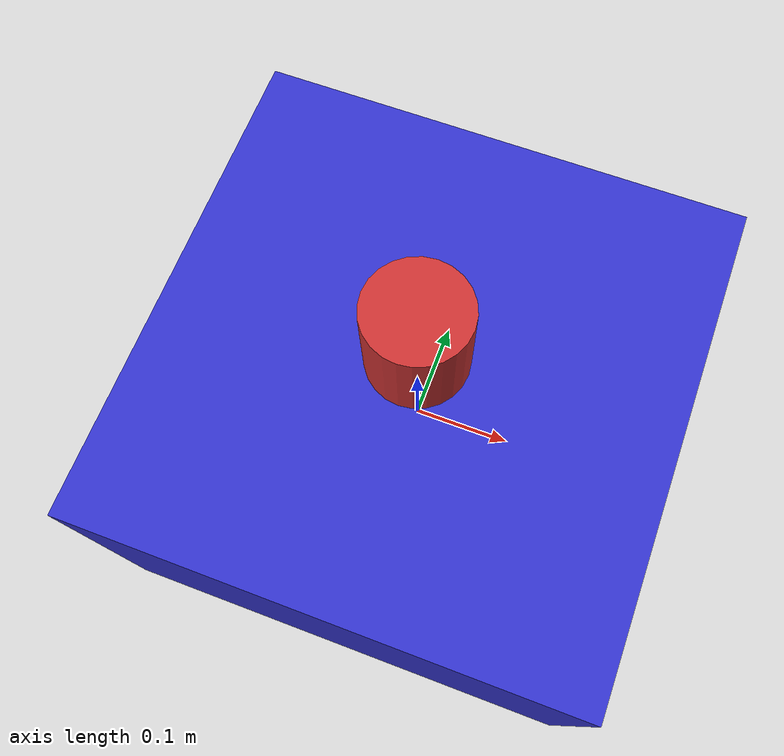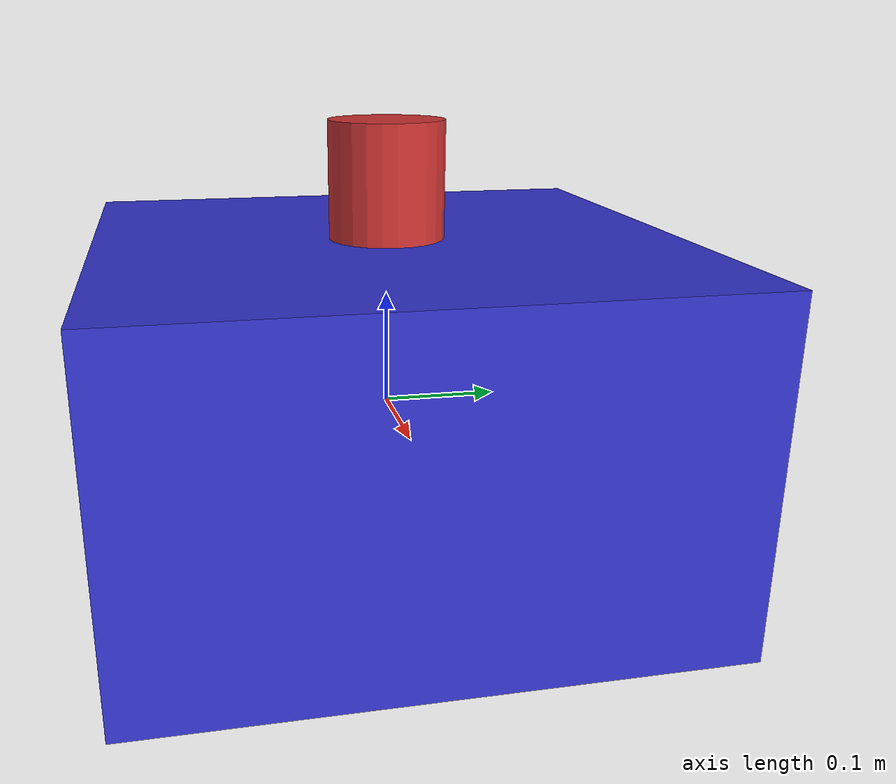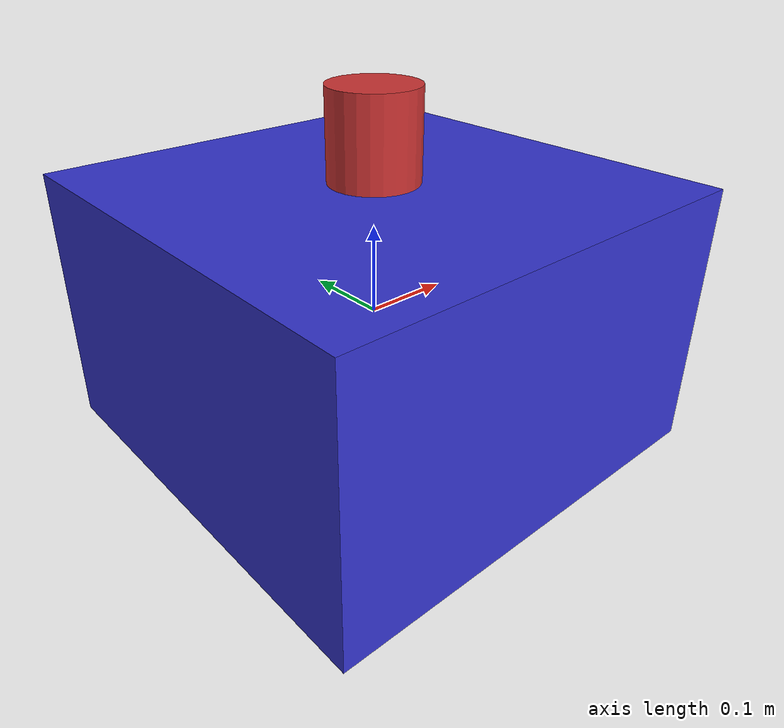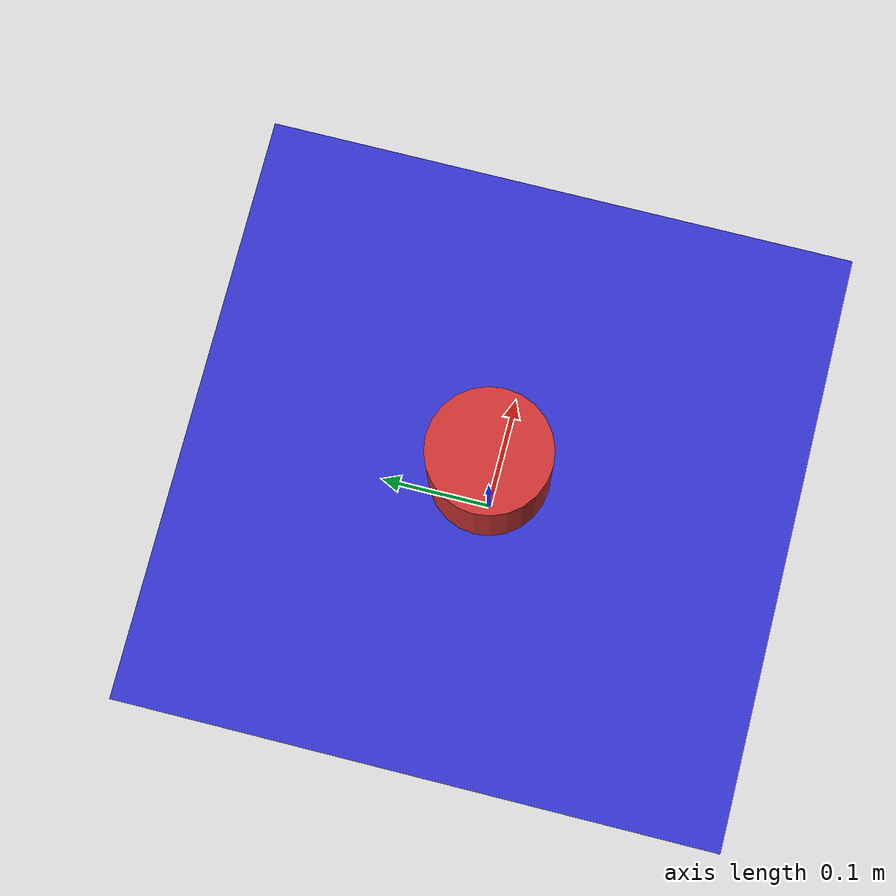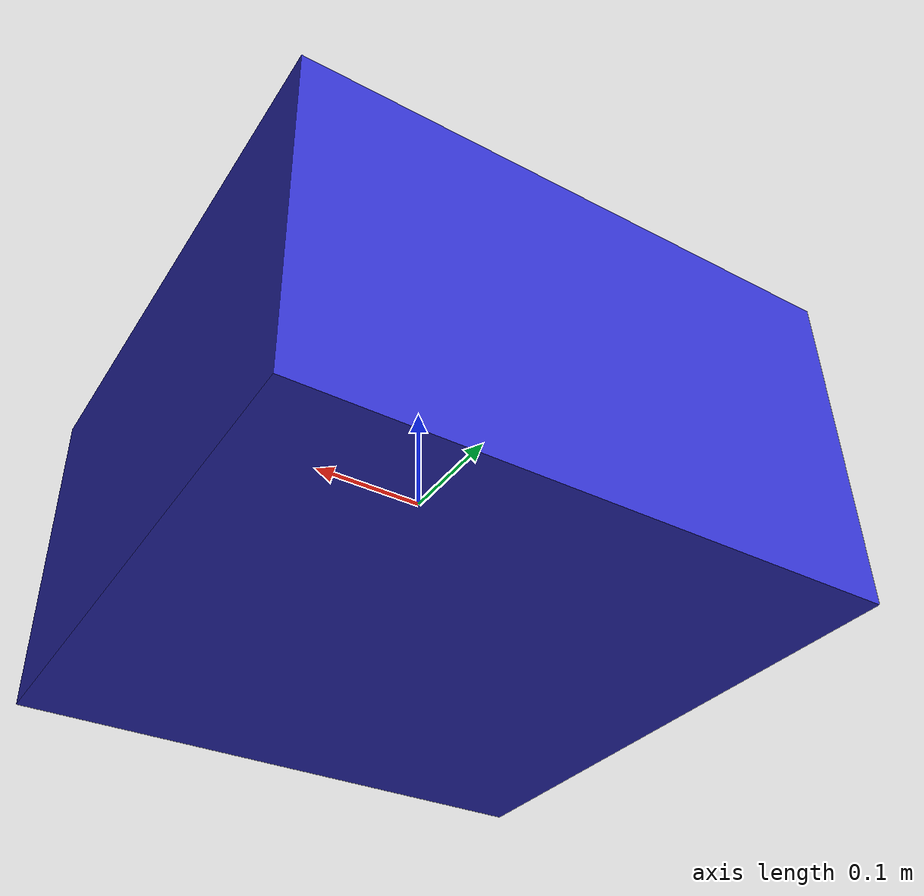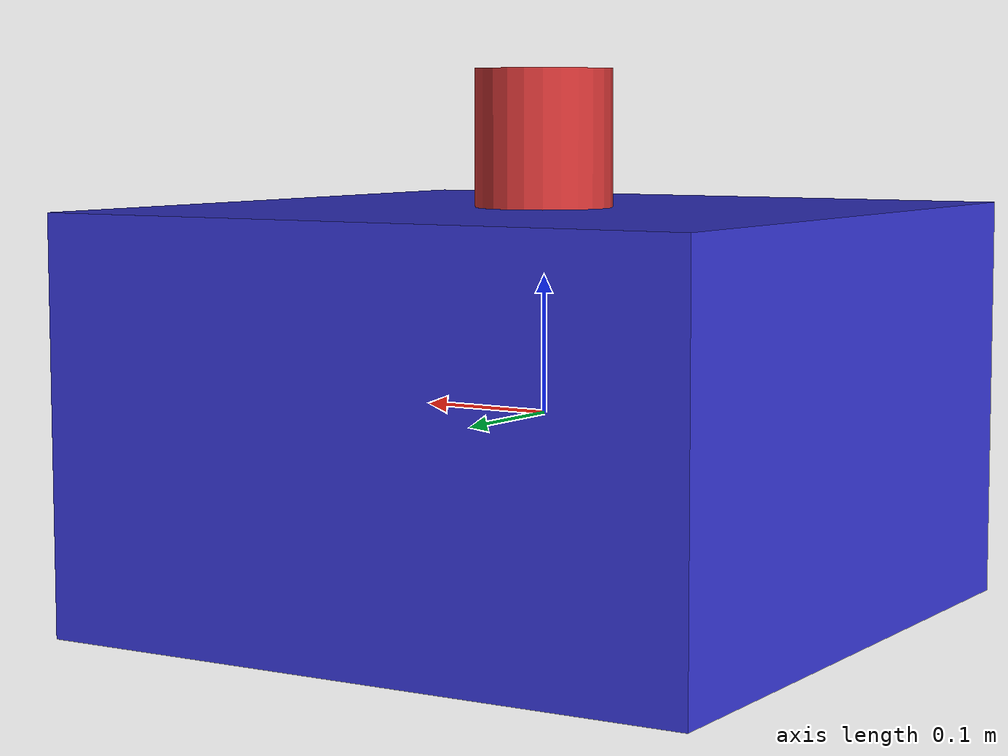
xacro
<?xml version="1.0"?>
<robot xmlns:xacro="http://www.ros.org/wiki/xacro" name="velodyne_robot">

    <!-- Base link -->
    <link name="base_link">
        <visual>
            <geometry>
                <box size="0.5 0.5 0.3"/>
            </geometry>
            <material name="blue">
                <color rgba="0.2 0.2 0.8 1"/>
            </material>
        </visual>
        <collision>
            <geometry>
                <box size="0.5 0.5 0.3"/>
            </geometry>
        </collision>
        <inertial>
            <mass value="10"/>
            <inertia ixx="0.1" ixy="0" ixz="0" iyy="0.1" iyz="0" izz="0.1"/>
        </inertial>
    </link>

    <!-- LiDAR base joint -->
    <joint name="lidar_base_joint" type="fixed">
        <parent link="base_link"/>
        <child link="lidar_base"/>
        <origin xyz="0 0 0.2" rpy="0 0 0"/>
    </joint>

    <!-- LiDAR base link -->
    <link name="lidar_base">
        <visual>
            <geometry>
                <cylinder radius="0.05" length="0.1"/>
            </geometry>
            <material name="red">
                <color rgba="0.8 0.2 0.2 1"/>
            </material>
        </visual>
        <collision>
            <geometry>
                <cylinder radius="0.05" length="0.1"/>
            </geometry>
        </collision>
        <inertial>
            <mass value="0.1"/>
            <inertia ixx="0.001" ixy="0" ixz="0" iyy="0.001" iyz="0" izz="0.001"/>
        </inertial>
    </link>

    <!-- LiDAR joint -->
    <joint name="lidar_joint" type="fixed">
        <parent link="lidar_base"/>
        <child link="lidar_link"/>
        <origin xyz="0 0 0.05" rpy="0 0 0"/>
    </joint>

    <!-- LiDAR link -->
    <link name="lidar_link"/>

    <!-- Gazebo plugins -->
    <gazebo reference="base_link">
        <material>Gazebo/Blue</material>
    </gazebo>

    <gazebo reference="lidar_base">
        <material>Gazebo/Red</material>
    </gazebo>

    <!-- Velodyne HDL32E LiDAR -->
    <gazebo reference="lidar_link">
        <sensor type="ray" name="velodyne2-HDL32E">
            <pose>0 0 0 0 0 0</pose>
            <visualize>false</visualize>
            <update_rate>10</update_rate>

            <ray>
                <scan>
                    <horizontal>
                        <samples>220</samples>
                        <resolution>1</resolution>
                        <min_angle>-3.142</min_angle>
                        <max_angle>3.142</max_angle>
                    </horizontal>
                    <vertical>
                        <samples>32</samples>
                        <resolution>1</resolution>
                        <min_angle>-0.535</min_angle>
                        <max_angle>0.186</max_angle>
                    </vertical>
                </scan>

                <range>
                    <min>0.3</min>
                    <max>131.0</max>
                    <resolution>0.001</resolution>
                </range>

                <noise>
                    <type>gaussian</type>
                    <mean>0.0</mean>
                    <stddev>0.0</stddev>
                </noise>
            </ray>

            <plugin name="gazebo_ros_laser_controller" filename="libgazebo_ros_velodyne_laser.so">
                <ros>
                    <namespace>/velodyne2</namespace>
                    <remapping>~/out:=velodyne_points2</remapping>
                </ros>
                <frame_name>lidar_link</frame_name>
                <organize_cloud>false</organize_cloud>
                <min_range>0.9</min_range>
                <max_range>130.0</max_range>
                <gaussian_noise>0.008</gaussian_noise>
            </plugin>
        </sensor>
    </gazebo>

</robot>
